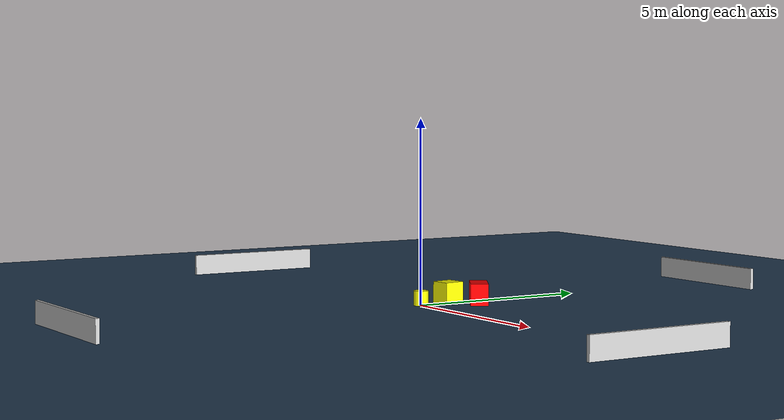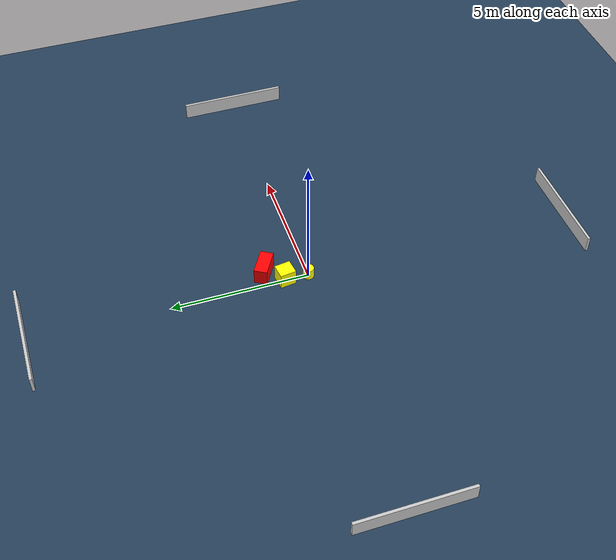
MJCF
<?xml version="1.0" ?>
<mujoco model="generated_environment">
  <option timestep="0.01" integrator="RK4" cone="elliptic"/>
  <default>
    <geom density="1"/>
  </default>
  <asset>
    <texture builtin="gradient" height="3072" name="skybox" rgb1="0.3 0.5 0.7" rgb2="0 0 0" type="skybox" width="512"/>
    <texture builtin="checker" height="300" name="groundplane" rgb1="0.2 0.3 0.4" rgb2="0.1 0.2 0.3" type="2d" width="300"/>
    <material name="groundplane" reflectance="0.2" texrepeat="5 5" texture="groundplane"/>
  </asset>
  <worldbody>
    <light dir="0 0 -1" directional="true" pos="0 0 1.5"/>
    <geom condim="3" friction="0.5 0.005 0.001" material="groundplane" name="floor" pos="0 0 0" size="0 0 0.05" type="plane"/>
    <body name="walls">
      <geom name="wall_1" condim="4" pos="-10.0 0.0 0.3" rgba="0.800000011920929 0.800000011920929 0.800000011920929 1.0" size="0.05 2.0 0.3" type="box"/>
      <geom name="wall_2" condim="4" pos="10.0 0.0 0.3" rgba="0.800000011920929 0.800000011920929 0.800000011920929 1.0" size="0.05 2.0 0.3" type="box"/>
      <geom name="wall_3" condim="4" pos="0.0 -10.0 0.3" rgba="0.800000011920929 0.800000011920929 0.800000011920929 1.0" size="2.0 0.05 0.3" type="box"/>
      <geom name="wall_4" condim="4" pos="0.0 10.0 0.3" rgba="0.800000011920929 0.800000011920929 0.800000011920929 1.0" size="2.0 0.05 0.3" type="box"/>
    </body>
    <body name="robot">
      <joint name="joint_x" type="slide" pos="0 0 0" axis="1 0 0"/>
      <joint name="joint_y" type="slide" pos="0 0 0" axis="0 1 0"/>
      <geom name="robot" type="cylinder" pos="0.0 0.0 0.2" size="0.2 0.2 0.0" mass="5.0" friction="1.0 0.005 0.0001" condim="4" rgba="1.0 1.0 0.0 1.0"/>
    </body>
    <body name="obstacle_1_movable">
      <geom name="obstacle_1_movable" condim="4" pos="0.035798736501537774 0.8432028901061479 0.3" euler="0 0 187.96956005790193" friction="0.0 0.005 0.001" rgba="1.0 1.0 0.0 1.0" size="0.2740191463946422 0.2936896095602964 0.3" type="box" mass="0.1"/>
      <joint type="free"/>
    </body>
    <body name="obstacle_2_static">
      <geom name="obstacle_2_static" condim="4" pos="0.5888865117436438 1.466583615087207 0.3" euler="0 0 239.22347669322883" friction="0.0 0.005 0.001" rgba="1.0 0.0 0.0 1.0" size="0.23845112950230368 0.4851748787499709 0.3" type="box"/>
    </body>
  </worldbody>
  <actuator>
    <motor name="actuator_x" joint="joint_x" gear="1" ctrlrange="-1 1"/>
    <motor name="actuator_y" joint="joint_y" gear="1" ctrlrange="-1 1"/>
  </actuator>
</mujoco>
